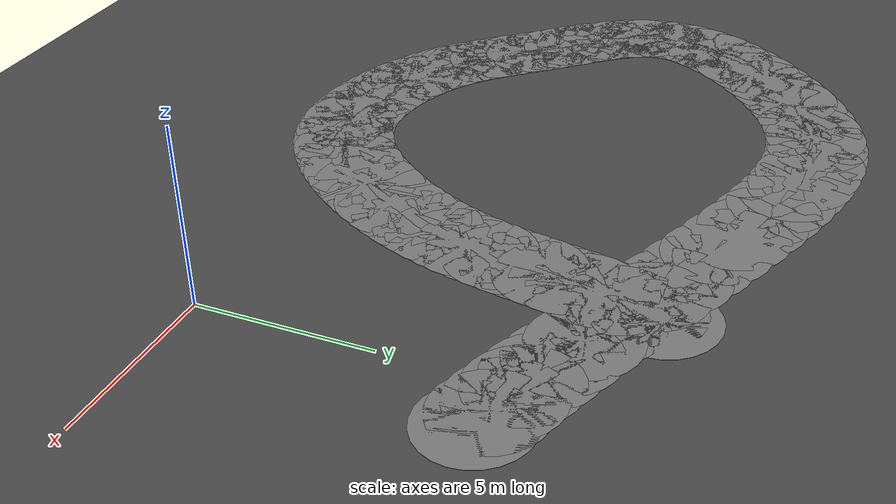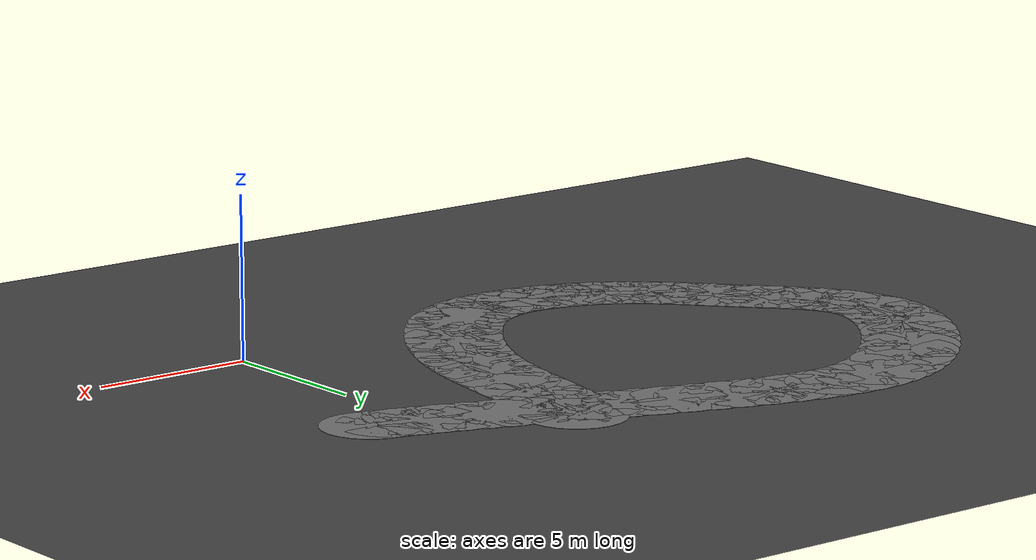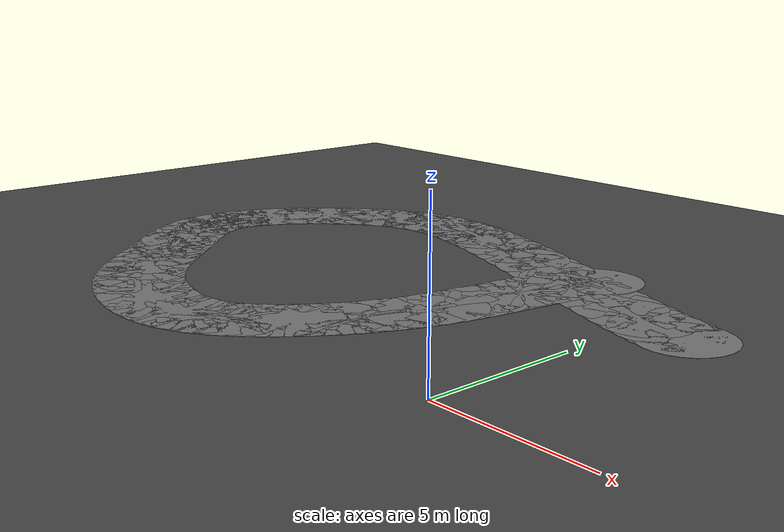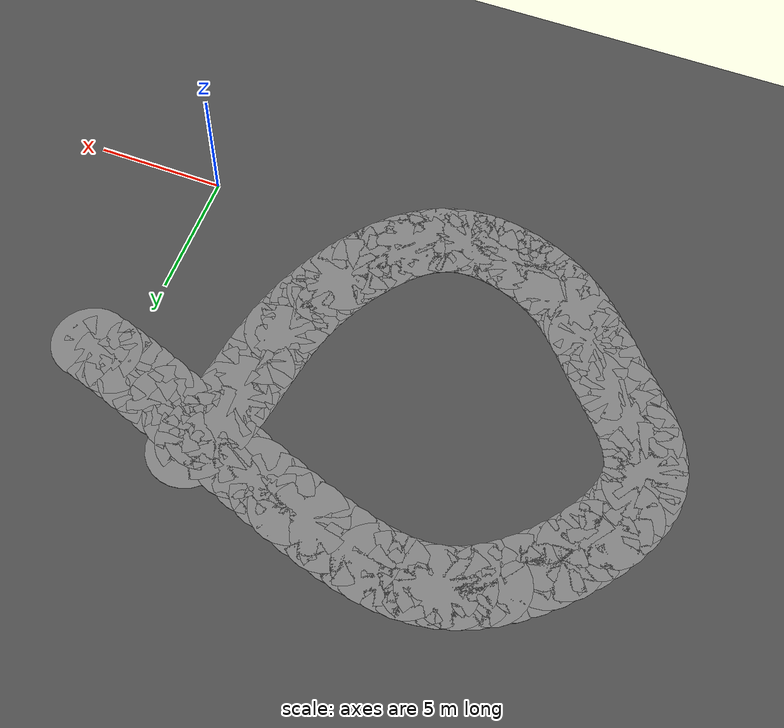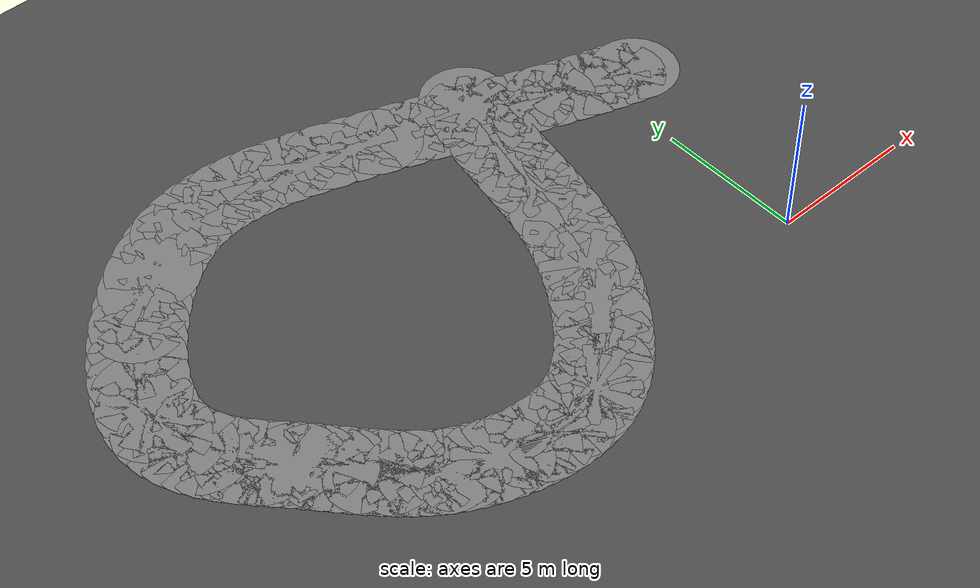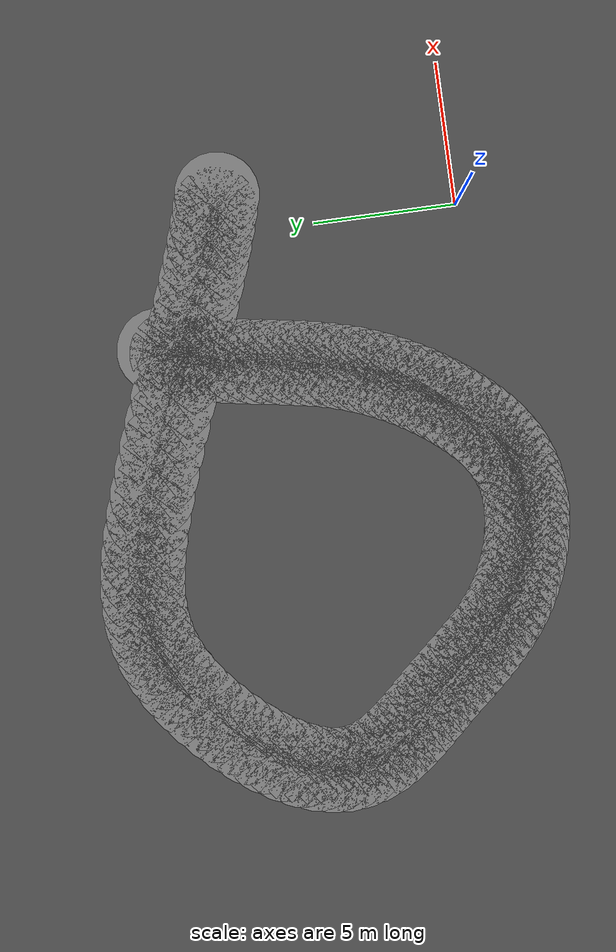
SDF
<sdf version="1.6">
 <world name="mirror_edge_world">
  <model name="ground_plane">
   <static>true</static>
   <link name="link">
    <collision name="collision">
     <geometry><plane><normal>0 0 1</normal><size>100 100</size></plane></geometry>
    </collision>
    <visual name="visual">
     <geometry><plane><normal>0 0 1</normal><size>100 100</size></plane></geometry>
     <material>
      <ambient>0.3 0.3 0.3 1</ambient>
      <diffuse>0.3 0.3 0.3 1</diffuse>
      <specular>0.5 0.5 0.5 1</specular>
      <emissive>0 0 0 1</emissive>
     </material>
    </visual>
   </link>
  </model>
  <model name="corridor_hex_199_0">
   <static>true</static>
   <link name="link">
    <pose>1.483 8.22 0.005 0 0 0</pose>
    <visual name="visual">
     <geometry><cylinder><radius>1.5</radius><length>0.01</length><segments>6</segments></cylinder></geometry>
     <material>
      <ambient>0.5 0.5 0.5 1</ambient>
      <diffuse>0.5 0.5 0.5 1</diffuse>
      <specular>0.3 0.3 0.3 1</specular>
      <emissive>0 0 0 1</emissive>
     </material>
    </visual>
   </link>
  </model>
  <model name="corridor_hex_200_0">
   <static>true</static>
   <link name="link">
    <pose>0.978 8.351 0.005 0 0 0</pose>
    <visual name="visual">
     <geometry><cylinder><radius>1.5</radius><length>0.01</length><segments>6</segments></cylinder></geometry>
     <material>
      <ambient>0.5 0.5 0.5 1</ambient>
      <diffuse>0.5 0.5 0.5 1</diffuse>
      <specular>0.3 0.3 0.3 1</specular>
      <emissive>0 0 0 1</emissive>
     </material>
    </visual>
   </link>
  </model>
  <model name="corridor_hex_201_0">
   <static>true</static>
   <link name="link">
    <pose>0.436 8.511 0.005 0 0 0</pose>
    <visual name="visual">
     <geometry><cylinder><radius>1.5</radius><length>0.01</length><segments>6</segments></cylinder></geometry>
     <material>
      <ambient>0.5 0.5 0.5 1</ambient>
      <diffuse>0.5 0.5 0.5 1</diffuse>
      <specular>0.3 0.3 0.3 1</specular>
      <emissive>0 0 0 1</emissive>
     </material>
    </visual>
   </link>
  </model>
  <model name="corridor_hex_202_0">
   <static>true</static>
   <link name="link">
    <pose>-0.147 8.7 0.005 0 0 0</pose>
    <visual name="visual">
     <geometry><cylinder><radius>1.5</radius><length>0.01</length><segments>6</segments></cylinder></geometry>
     <material>
      <ambient>0.5 0.5 0.5 1</ambient>
      <diffuse>0.5 0.5 0.5 1</diffuse>
      <specular>0.3 0.3 0.3 1</specular>
      <emissive>0 0 0 1</emissive>
     </material>
    </visual>
   </link>
  </model>
  <model name="corridor_hex_203_0">
   <static>true</static>
   <link name="link">
    <pose>-0.778 8.92 0.005 0 0 0</pose>
    <visual name="visual">
     <geometry><cylinder><radius>1.5</radius><length>0.01</length><segments>6</segments></cylinder></geometry>
     <material>
      <ambient>0.5 0.5 0.5 1</ambient>
      <diffuse>0.5 0.5 0.5 1</diffuse>
      <specular>0.3 0.3 0.3 1</specular>
      <emissive>0 0 0 1</emissive>
     </material>
    </visual>
   </link>
  </model>
  <model name="corridor_hex_204_0">
   <static>true</static>
   <link name="link">
    <pose>-1.462 9.17 0.005 0 0 0</pose>
    <visual name="visual">
     <geometry><cylinder><radius>1.5</radius><length>0.01</length><segments>6</segments></cylinder></geometry>
     <material>
      <ambient>0.5 0.5 0.5 1</ambient>
      <diffuse>0.5 0.5 0.5 1</diffuse>
      <specular>0.3 0.3 0.3 1</specular>
      <emissive>0 0 0 1</emissive>
     </material>
    </visual>
   </link>
  </model>
  <model name="corridor_hex_205_0">
   <static>true</static>
   <link name="link">
    <pose>-2.194 9.448 0.005 0 0 0</pose>
    <visual name="visual">
     <geometry><cylinder><radius>1.5</radius><length>0.01</length><segments>6</segments></cylinder></geometry>
     <material>
      <ambient>0.5 0.5 0.5 1</ambient>
      <diffuse>0.5 0.5 0.5 1</diffuse>
      <specular>0.3 0.3 0.3 1</specular>
      <emissive>0 0 0 1</emissive>
     </material>
    </visual>
   </link>
  </model>
  <model name="corridor_hex_206_0">
   <static>true</static>
   <link name="link">
    <pose>-2.964 9.746 0.005 0 0 0</pose>
    <visual name="visual">
     <geometry><cylinder><radius>1.5</radius><length>0.01</length><segments>6</segments></cylinder></geometry>
     <material>
      <ambient>0.5 0.5 0.5 1</ambient>
      <diffuse>0.5 0.5 0.5 1</diffuse>
      <specular>0.3 0.3 0.3 1</specular>
      <emissive>0 0 0 1</emissive>
     </material>
    </visual>
   </link>
  </model>
  <model name="corridor_hex_207_0">
   <static>true</static>
   <link name="link">
    <pose>-3.764 10.058 0.005 0 0 0</pose>
    <visual name="visual">
     <geometry><cylinder><radius>1.5</radius><length>0.01</length><segments>6</segments></cylinder></geometry>
     <material>
      <ambient>0.5 0.5 0.5 1</ambient>
      <diffuse>0.5 0.5 0.5 1</diffuse>
      <specular>0.3 0.3 0.3 1</specular>
      <emissive>0 0 0 1</emissive>
     </material>
    </visual>
   </link>
  </model>
  <model name="corridor_hex_208_0">
   <static>true</static>
   <link name="link">
    <pose>-4.584 10.379 0.005 0 0 0</pose>
    <visual name="visual">
     <geometry><cylinder><radius>1.5</radius><length>0.01</length><segments>6</segments></cylinder></geometry>
     <material>
      <ambient>0.5 0.5 0.5 1</ambient>
      <diffuse>0.5 0.5 0.5 1</diffuse>
      <specular>0.3 0.3 0.3 1</specular>
      <emissive>0 0 0 1</emissive>
     </material>
    </visual>
   </link>
  </model>
  <model name="corridor_hex_209_0">
   <static>true</static>
   <link name="link">
    <pose>-5.413 10.701 0.005 0 0 0</pose>
    <visual name="visual">
     <geometry><cylinder><radius>1.5</radius><length>0.01</length><segments>6</segments></cylinder></geometry>
     <material>
      <ambient>0.5 0.5 0.5 1</ambient>
      <diffuse>0.5 0.5 0.5 1</diffuse>
      <specular>0.3 0.3 0.3 1</specular>
      <emissive>0 0 0 1</emissive>
     </material>
    </visual>
   </link>
  </model>
  <model name="corridor_hex_210_0">
   <static>true</static>
   <link name="link">
    <pose>-6.241 11.018 0.005 0 0 0</pose>
    <visual name="visual">
     <geometry><cylinder><radius>1.5</radius><length>0.01</length><segments>6</segments></cylinder></geometry>
     <material>
      <ambient>0.5 0.5 0.5 1</ambient>
      <diffuse>0.5 0.5 0.5 1</diffuse>
      <specular>0.3 0.3 0.3 1</specular>
      <emissive>0 0 0 1</emissive>
     </material>
    </visual>
   </link>
  </model>
  <model name="corridor_hex_211_0">
   <static>true</static>
   <link name="link">
    <pose>-7.06 11.324 0.005 0 0 0</pose>
    <visual name="visual">
     <geometry><cylinder><radius>1.5</radius><length>0.01</length><segments>6</segments></cylinder></geometry>
     <material>
      <ambient>0.5 0.5 0.5 1</ambient>
      <diffuse>0.5 0.5 0.5 1</diffuse>
      <specular>0.3 0.3 0.3 1</specular>
      <emissive>0 0 0 1</emissive>
     </material>
    </visual>
   </link>
  </model>
  <model name="corridor_hex_212_0">
   <static>true</static>
   <link name="link">
    <pose>-7.859 11.613 0.005 0 0 0</pose>
    <visual name="visual">
     <geometry><cylinder><radius>1.5</radius><length>0.01</length><segments>6</segments></cylinder></geometry>
     <material>
      <ambient>0.5 0.5 0.5 1</ambient>
      <diffuse>0.5 0.5 0.5 1</diffuse>
      <specular>0.3 0.3 0.3 1</specular>
      <emissive>0 0 0 1</emissive>
     </material>
    </visual>
   </link>
  </model>
  <model name="corridor_hex_213_0">
   <static>true</static>
   <link name="link">
    <pose>-8.629 11.878 0.005 0 0 0</pose>
    <visual name="visual">
     <geometry><cylinder><radius>1.5</radius><length>0.01</length><segments>6</segments></cylinder></geometry>
     <material>
      <ambient>0.5 0.5 0.5 1</ambient>
      <diffuse>0.5 0.5 0.5 1</diffuse>
      <specular>0.3 0.3 0.3 1</specular>
      <emissive>0 0 0 1</emissive>
     </material>
    </visual>
   </link>
  </model>
  <model name="corridor_hex_214_0">
   <static>true</static>
   <link name="link">
    <pose>-9.36 12.113 0.005 0 0 0</pose>
    <visual name="visual">
     <geometry><cylinder><radius>1.5</radius><length>0.01</length><segments>6</segments></cylinder></geometry>
     <material>
      <ambient>0.5 0.5 0.5 1</ambient>
      <diffuse>0.5 0.5 0.5 1</diffuse>
      <specular>0.3 0.3 0.3 1</specular>
      <emissive>0 0 0 1</emissive>
     </material>
    </visual>
   </link>
  </model>
  <model name="corridor_hex_215_0">
   <static>true</static>
   <link name="link">
    <pose>-10.05 12.313 0.005 0 0 0</pose>
    <visual name="visual">
     <geometry><cylinder><radius>1.5</radius><length>0.01</length><segments>6</segments></cylinder></geometry>
     <material>
      <ambient>0.5 0.5 0.5 1</ambient>
      <diffuse>0.5 0.5 0.5 1</diffuse>
      <specular>0.3 0.3 0.3 1</specular>
      <emissive>0 0 0 1</emissive>
     </material>
    </visual>
   </link>
  </model>
  <model name="corridor_hex_216_0">
   <static>true</static>
   <link name="link">
    <pose>-10.703 12.474 0.005 0 0 0</pose>
    <visual name="visual">
     <geometry><cylinder><radius>1.5</radius><length>0.01</length><segments>6</segments></cylinder></geometry>
     <material>
      <ambient>0.5 0.5 0.5 1</ambient>
      <diffuse>0.5 0.5 0.5 1</diffuse>
      <specular>0.3 0.3 0.3 1</specular>
      <emissive>0 0 0 1</emissive>
     </material>
    </visual>
   </link>
  </model>
  <model name="corridor_hex_217_0">
   <static>true</static>
   <link name="link">
    <pose>-11.323 12.592 0.005 0 0 0</pose>
    <visual name="visual">
     <geometry><cylinder><radius>1.5</radius><length>0.01</length><segments>6</segments></cylinder></geometry>
     <material>
      <ambient>0.5 0.5 0.5 1</ambient>
      <diffuse>0.5 0.5 0.5 1</diffuse>
      <specular>0.3 0.3 0.3 1</specular>
      <emissive>0 0 0 1</emissive>
     </material>
    </visual>
   </link>
  </model>
  <model name="corridor_hex_218_0">
   <static>true</static>
   <link name="link">
    <pose>-11.917 12.664 0.005 0 0 0</pose>
    <visual name="visual">
     <geometry><cylinder><radius>1.5</radius><length>0.01</length><segments>6</segments></cylinder></geometry>
     <material>
      <ambient>0.5 0.5 0.5 1</ambient>
      <diffuse>0.5 0.5 0.5 1</diffuse>
      <specular>0.3 0.3 0.3 1</specular>
      <emissive>0 0 0 1</emissive>
     </material>
    </visual>
   </link>
  </model>
  <model name="corridor_hex_219_0">
   <static>true</static>
   <link name="link">
    <pose>-12.488 12.684 0.005 0 0 0</pose>
    <visual name="visual">
     <geometry><cylinder><radius>1.5</radius><length>0.01</length><segments>6</segments></cylinder></geometry>
     <material>
      <ambient>0.5 0.5 0.5 1</ambient>
      <diffuse>0.5 0.5 0.5 1</diffuse>
      <specular>0.3 0.3 0.3 1</specular>
      <emissive>0 0 0 1</emissive>
     </material>
    </visual>
   </link>
  </model>
  <model name="corridor_hex_220_0">
   <static>true</static>
   <link name="link">
    <pose>-13.042 12.651 0.005 0 0 0</pose>
    <visual name="visual">
     <geometry><cylinder><radius>1.5</radius><length>0.01</length><segments>6</segments></cylinder></geometry>
     <material>
      <ambient>0.5 0.5 0.5 1</ambient>
      <diffuse>0.5 0.5 0.5 1</diffuse>
      <specular>0.3 0.3 0.3 1</specular>
      <emissive>0 0 0 1</emissive>
     </material>
    </visual>
   </link>
  </model>
  <model name="corridor_hex_221_0">
   <static>true</static>
   <link name="link">
    <pose>-13.583 12.559 0.005 0 0 0</pose>
    <visual name="visual">
     <geometry><cylinder><radius>1.5</radius><length>0.01</length><segments>6</segments></cylinder></geometry>
     <material>
      <ambient>0.5 0.5 0.5 1</ambient>
      <diffuse>0.5 0.5 0.5 1</diffuse>
      <specular>0.3 0.3 0.3 1</specular>
      <emissive>0 0 0 1</emissive>
     </material>
    </visual>
   </link>
  </model>
  <model name="corridor_hex_222_0">
   <static>true</static>
   <link name="link">
    <pose>-14.116 12.405 0.005 0 0 0</pose>
    <visual name="visual">
     <geometry><cylinder><radius>1.5</radius><length>0.01</length><segments>6</segments></cylinder></geometry>
     <material>
      <ambient>0.5 0.5 0.5 1</ambient>
      <diffuse>0.5 0.5 0.5 1</diffuse>
      <specular>0.3 0.3 0.3 1</specular>
      <emissive>0 0 0 1</emissive>
     </material>
    </visual>
   </link>
  </model>
  <model name="corridor_hex_223_0">
   <static>true</static>
   <link name="link">
    <pose>-14.646 12.185 0.005 0 0 0</pose>
    <visual name="visual">
     <geometry><cylinder><radius>1.5</radius><length>0.01</length><segments>6</segments></cylinder></geometry>
     <material>
      <ambient>0.5 0.5 0.5 1</ambient>
      <diffuse>0.5 0.5 0.5 1</diffuse>
      <specular>0.3 0.3 0.3 1</specular>
      <emissive>0 0 0 1</emissive>
     </material>
    </visual>
   </link>
  </model>
  <model name="corridor_hex_224_0">
   <static>true</static>
   <link name="link">
    <pose>-15.178 11.896 0.005 0 0 0</pose>
    <visual name="visual">
     <geometry><cylinder><radius>1.5</radius><length>0.01</length><segments>6</segments></cylinder></geometry>
     <material>
      <ambient>0.5 0.5 0.5 1</ambient>
      <diffuse>0.5 0.5 0.5 1</diffuse>
      <specular>0.3 0.3 0.3 1</specular>
      <emissive>0 0 0 1</emissive>
     </material>
    </visual>
   </link>
  </model>
  <model name="corridor_hex_225_0">
   <static>true</static>
   <link name="link">
    <pose>-15.71 11.538 0.005 0 0 0</pose>
    <visual name="visual">
     <geometry><cylinder><radius>1.5</radius><length>0.01</length><segments>6</segments></cylinder></geometry>
     <material>
      <ambient>0.5 0.5 0.5 1</ambient>
      <diffuse>0.5 0.5 0.5 1</diffuse>
      <specular>0.3 0.3 0.3 1</specular>
      <emissive>0 0 0 1</emissive>
     </material>
    </visual>
   </link>
  </model>
  <model name="corridor_hex_226_0">
   <static>true</static>
   <link name="link">
    <pose>-16.235 11.122 0.005 0 0 0</pose>
    <visual name="visual">
     <geometry><cylinder><radius>1.5</radius><length>0.01</length><segments>6</segments></cylinder></geometry>
     <material>
      <ambient>0.5 0.5 0.5 1</ambient>
      <diffuse>0.5 0.5 0.5 1</diffuse>
      <specular>0.3 0.3 0.3 1</specular>
      <emissive>0 0 0 1</emissive>
     </material>
    </visual>
   </link>
  </model>
  <model name="corridor_hex_227_0">
   <static>true</static>
   <link name="link">
    <pose>-16.743 10.657 0.005 0 0 0</pose>
    <visual name="visual">
     <geometry><cylinder><radius>1.5</radius><length>0.01</length><segments>6</segments></cylinder></geometry>
     <material>
      <ambient>0.5 0.5 0.5 1</ambient>
      <diffuse>0.5 0.5 0.5 1</diffuse>
      <specular>0.3 0.3 0.3 1</specular>
      <emissive>0 0 0 1</emissive>
     </material>
    </visual>
   </link>
  </model>
  <model name="corridor_hex_228_0">
   <static>true</static>
   <link name="link">
    <pose>-17.224 10.155 0.005 0 0 0</pose>
    <visual name="visual">
     <geometry><cylinder><radius>1.5</radius><length>0.01</length><segments>6</segments></cylinder></geometry>
     <material>
      <ambient>0.5 0.5 0.5 1</ambient>
      <diffuse>0.5 0.5 0.5 1</diffuse>
      <specular>0.3 0.3 0.3 1</specular>
      <emissive>0 0 0 1</emissive>
     </material>
    </visual>
   </link>
  </model>
  <model name="corridor_hex_229_0">
   <static>true</static>
   <link name="link">
    <pose>-17.669 9.624 0.005 0 0 0</pose>
    <visual name="visual">
     <geometry><cylinder><radius>1.5</radius><length>0.01</length><segments>6</segments></cylinder></geometry>
     <material>
      <ambient>0.5 0.5 0.5 1</ambient>
      <diffuse>0.5 0.5 0.5 1</diffuse>
      <specular>0.3 0.3 0.3 1</specular>
      <emissive>0 0 0 1</emissive>
     </material>
    </visual>
   </link>
  </model>
  <model name="corridor_hex_230_0">
   <static>true</static>
   <link name="link">
    <pose>-18.067 9.076 0.005 0 0 0</pose>
    <visual name="visual">
     <geometry><cylinder><radius>1.5</radius><length>0.01</length><segments>6</segments></cylinder></geometry>
     <material>
      <ambient>0.5 0.5 0.5 1</ambient>
      <diffuse>0.5 0.5 0.5 1</diffuse>
      <specular>0.3 0.3 0.3 1</specular>
      <emissive>0 0 0 1</emissive>
     </material>
    </visual>
   </link>
  </model>
  <model name="corridor_hex_231_0">
   <static>true</static>
   <link name="link">
    <pose>-18.411 8.521 0.005 0 0 0</pose>
    <visual name="visual">
     <geometry><cylinder><radius>1.5</radius><length>0.01</length><segments>6</segments></cylinder></geometry>
     <material>
      <ambient>0.5 0.5 0.5 1</ambient>
      <diffuse>0.5 0.5 0.5 1</diffuse>
      <specular>0.3 0.3 0.3 1</specular>
      <emissive>0 0 0 1</emissive>
     </material>
    </visual>
   </link>
  </model>
  <model name="corridor_hex_232_0">
   <static>true</static>
   <link name="link">
    <pose>-18.689 7.97 0.005 0 0 0</pose>
    <visual name="visual">
     <geometry><cylinder><radius>1.5</radius><length>0.01</length><segments>6</segments></cylinder></geometry>
     <material>
      <ambient>0.5 0.5 0.5 1</ambient>
      <diffuse>0.5 0.5 0.5 1</diffuse>
      <specular>0.3 0.3 0.3 1</specular>
      <emissive>0 0 0 1</emissive>
     </material>
    </visual>
   </link>
  </model>
  <model name="corridor_hex_233_0">
   <static>true</static>
   <link name="link">
    <pose>-18.894 7.431 0.005 0 0 0</pose>
    <visual name="visual">
     <geometry><cylinder><radius>1.5</radius><length>0.01</length><segments>6</segments></cylinder></geometry>
     <material>
      <ambient>0.5 0.5 0.5 1</ambient>
      <diffuse>0.5 0.5 0.5 1</diffuse>
      <specular>0.3 0.3 0.3 1</specular>
      <emissive>0 0 0 1</emissive>
     </material>
    </visual>
   </link>
  </model>
  <model name="corridor_hex_234_0">
   <static>true</static>
   <link name="link">
    <pose>-19.014 6.916 0.005 0 0 0</pose>
    <visual name="visual">
     <geometry><cylinder><radius>1.5</radius><length>0.01</length><segments>6</segments></cylinder></geometry>
     <material>
      <ambient>0.5 0.5 0.5 1</ambient>
      <diffuse>0.5 0.5 0.5 1</diffuse>
      <specular>0.3 0.3 0.3 1</specular>
      <emissive>0 0 0 1</emissive>
     </material>
    </visual>
   </link>
  </model>
  <model name="corridor_hex_235_0">
   <static>true</static>
   <link name="link">
    <pose>-19.046 6.432 0.005 0 0 0</pose>
    <visual name="visual">
     <geometry><cylinder><radius>1.5</radius><length>0.01</length><segments>6</segments></cylinder></geometry>
     <material>
      <ambient>0.5 0.5 0.5 1</ambient>
      <diffuse>0.5 0.5 0.5 1</diffuse>
      <specular>0.3 0.3 0.3 1</specular>
      <emissive>0 0 0 1</emissive>
     </material>
    </visual>
   </link>
  </model>
  <model name="corridor_hex_236_0">
   <static>true</static>
   <link name="link">
    <pose>-18.998 5.976 0.005 0 0 0</pose>
    <visual name="visual">
     <geometry><cylinder><radius>1.5</radius><length>0.01</length><segments>6</segments></cylinder></geometry>
     <material>
      <ambient>0.5 0.5 0.5 1</ambient>
      <diffuse>0.5 0.5 0.5 1</diffuse>
      <specular>0.3 0.3 0.3 1</specular>
      <emissive>0 0 0 1</emissive>
     </material>
    </visual>
   </link>
  </model>
  <model name="corridor_hex_237_0">
   <static>true</static>
   <link name="link">
    <pose>-18.881 5.546 0.005 0 0 0</pose>
    <visual name="visual">
     <geometry><cylinder><radius>1.5</radius><length>0.01</length><segments>6</segments></cylinder></geometry>
     <material>
      <ambient>0.5 0.5 0.5 1</ambient>
      <diffuse>0.5 0.5 0.5 1</diffuse>
      <specular>0.3 0.3 0.3 1</specular>
      <emissive>0 0 0 1</emissive>
     </material>
    </visual>
   </link>
  </model>
  <model name="corridor_hex_238_0">
   <static>true</static>
   <link name="link">
    <pose>-18.706 5.139 0.005 0 0 0</pose>
    <visual name="visual">
     <geometry><cylinder><radius>1.5</radius><length>0.01</length><segments>6</segments></cylinder></geometry>
     <material>
      <ambient>0.5 0.5 0.5 1</ambient>
      <diffuse>0.5 0.5 0.5 1</diffuse>
      <specular>0.3 0.3 0.3 1</specular>
      <emissive>0 0 0 1</emissive>
     </material>
    </visual>
   </link>
  </model>
  <model name="corridor_hex_239_0">
   <static>true</static>
   <link name="link">
    <pose>-18.482 4.751 0.005 0 0 0</pose>
    <visual name="visual">
     <geometry><cylinder><radius>1.5</radius><length>0.01</length><segments>6</segments></cylinder></geometry>
     <material>
      <ambient>0.5 0.5 0.5 1</ambient>
      <diffuse>0.5 0.5 0.5 1</diffuse>
      <specular>0.3 0.3 0.3 1</specular>
      <emissive>0 0 0 1</emissive>
     </material>
    </visual>
   </link>
  </model>
  <model name="corridor_hex_240_0">
   <static>true</static>
   <link name="link">
    <pose>-18.22 4.38 0.005 0 0 0</pose>
    <visual name="visual">
     <geometry><cylinder><radius>1.5</radius><length>0.01</length><segments>6</segments></cylinder></geometry>
     <material>
      <ambient>0.5 0.5 0.5 1</ambient>
      <diffuse>0.5 0.5 0.5 1</diffuse>
      <specular>0.3 0.3 0.3 1</specular>
      <emissive>0 0 0 1</emissive>
     </material>
    </visual>
   </link>
  </model>
  <model name="corridor_hex_241_0">
   <static>true</static>
   <link name="link">
    <pose>-17.93 4.022 0.005 0 0 0</pose>
    <visual name="visual">
     <geometry><cylinder><radius>1.5</radius><length>0.01</length><segments>6</segments></cylinder></geometry>
     <material>
      <ambient>0.5 0.5 0.5 1</ambient>
      <diffuse>0.5 0.5 0.5 1</diffuse>
      <specular>0.3 0.3 0.3 1</specular>
      <emissive>0 0 0 1</emissive>
     </material>
    </visual>
   </link>
  </model>
  <model name="corridor_hex_242_0">
   <static>true</static>
   <link name="link">
    <pose>-17.623 3.675 0.005 0 0 0</pose>
    <visual name="visual">
     <geometry><cylinder><radius>1.5</radius><length>0.01</length><segments>6</segments></cylinder></geometry>
     <material>
      <ambient>0.5 0.5 0.5 1</ambient>
      <diffuse>0.5 0.5 0.5 1</diffuse>
      <specular>0.3 0.3 0.3 1</specular>
      <emissive>0 0 0 1</emissive>
     </material>
    </visual>
   </link>
  </model>
  <model name="corridor_hex_243_0">
   <static>true</static>
   <link name="link">
    <pose>-17.31 3.335 0.005 0 0 0</pose>
    <visual name="visual">
     <geometry><cylinder><radius>1.5</radius><length>0.01</length><segments>6</segments></cylinder></geometry>
     <material>
      <ambient>0.5 0.5 0.5 1</ambient>
      <diffuse>0.5 0.5 0.5 1</diffuse>
      <specular>0.3 0.3 0.3 1</specular>
      <emissive>0 0 0 1</emissive>
     </material>
    </visual>
   </link>
  </model>
  <model name="corridor_hex_244_0">
   <static>true</static>
   <link name="link">
    <pose>-17.0 3.0 0.005 0 0 0</pose>
    <visual name="visual">
     <geometry><cylinder><radius>1.5</radius><length>0.01</length><segments>6</segments></cylinder></geometry>
     <material>
      <ambient>0.5 0.5 0.5 1</ambient>
      <diffuse>0.5 0.5 0.5 1</diffuse>
      <specular>0.3 0.3 0.3 1</specular>
      <emissive>0 0 0 1</emissive>
     </material>
    </visual>
   </link>
  </model>
  <model name="corridor_hex_245_0">
   <static>true</static>
   <link name="link">
    <pose>-16.702 2.667 0.005 0 0 0</pose>
    <visual name="visual">
     <geometry><cylinder><radius>1.5</radius><length>0.01</length><segments>6</segments></cylinder></geometry>
     <material>
      <ambient>0.5 0.5 0.5 1</ambient>
      <diffuse>0.5 0.5 0.5 1</diffuse>
      <specular>0.3 0.3 0.3 1</specular>
      <emissive>0 0 0 1</emissive>
     </material>
    </visual>
   </link>
  </model>
  <model name="corridor_hex_246_0">
   <static>true</static>
   <link name="link">
    <pose>-16.415 2.337 0.005 0 0 0</pose>
    <visual name="visual">
     <geometry><cylinder><radius>1.5</radius><length>0.01</length><segments>6</segments></cylinder></geometry>
     <material>
      <ambient>0.5 0.5 0.5 1</ambient>
      <diffuse>0.5 0.5 0.5 1</diffuse>
      <specular>0.3 0.3 0.3 1</specular>
      <emissive>0 0 0 1</emissive>
     </material>
    </visual>
   </link>
  </model>
  <model name="corridor_hex_247_0">
   <static>true</static>
   <link name="link">
    <pose>-16.134 2.013 0.005 0 0 0</pose>
    <visual name="visual">
     <geometry><cylinder><radius>1.5</radius><length>0.01</length><segments>6</segments></cylinder></geometry>
     <material>
      <ambient>0.5 0.5 0.5 1</ambient>
      <diffuse>0.5 0.5 0.5 1</diffuse>
      <specular>0.3 0.3 0.3 1</specular>
      <emissive>0 0 0 1</emissive>
     </material>
    </visual>
   </link>
  </model>
  <model name="corridor_hex_248_0">
   <static>true</static>
   <link name="link">
    <pose>-15.857 1.695 0.005 0 0 0</pose>
    <visual name="visual">
     <geometry><cylinder><radius>1.5</radius><length>0.01</length><segments>6</segments></cylinder></geometry>
     <material>
      <ambient>0.5 0.5 0.5 1</ambient>
      <diffuse>0.5 0.5 0.5 1</diffuse>
      <specular>0.3 0.3 0.3 1</specular>
      <emissive>0 0 0 1</emissive>
     </material>
    </visual>
   </link>
  </model>
  <model name="corridor_hex_249_0">
   <static>true</static>
   <link name="link">
    <pose>-15.579 1.386 0.005 0 0 0</pose>
    <visual name="visual">
     <geometry><cylinder><radius>1.5</radius><length>0.01</length><segments>6</segments></cylinder></geometry>
     <material>
      <ambient>0.5 0.5 0.5 1</ambient>
      <diffuse>0.5 0.5 0.5 1</diffuse>
      <specular>0.3 0.3 0.3 1</specular>
      <emissive>0 0 0 1</emissive>
     </material>
    </visual>
   </link>
  </model>
  <model name="corridor_hex_250_0">
   <static>true</static>
   <link name="link">
    <pose>-15.297 1.088 0.005 0 0 0</pose>
    <visual name="visual">
     <geometry><cylinder><radius>1.5</radius><length>0.01</length><segments>6</segments></cylinder></geometry>
     <material>
      <ambient>0.5 0.5 0.5 1</ambient>
      <diffuse>0.5 0.5 0.5 1</diffuse>
      <specular>0.3 0.3 0.3 1</specular>
      <emissive>0 0 0 1</emissive>
     </material>
    </visual>
   </link>
  </model>
  <model name="corridor_hex_251_0">
   <static>true</static>
   <link name="link">
    <pose>-15.008 0.802 0.005 0 0 0</pose>
    <visual name="visual">
     <geometry><cylinder><radius>1.5</radius><length>0.01</length><segments>6</segments></cylinder></geometry>
     <material>
      <ambient>0.5 0.5 0.5 1</ambient>
      <diffuse>0.5 0.5 0.5 1</diffuse>
      <specular>0.3 0.3 0.3 1</specular>
      <emissive>0 0 0 1</emissive>
     </material>
    </visual>
   </link>
  </model>
  <model name="corridor_hex_252_0">
   <static>true</static>
   <link name="link">
    <pose>-14.707 0.531 0.005 0 0 0</pose>
    <visual name="visual">
     <geometry><cylinder><radius>1.5</radius><length>0.01</length><segments>6</segments></cylinder></geometry>
     <material>
      <ambient>0.5 0.5 0.5 1</ambient>
      <diffuse>0.5 0.5 0.5 1</diffuse>
      <specular>0.3 0.3 0.3 1</specular>
      <emissive>0 0 0 1</emissive>
     </material>
    </visual>
   </link>
  </model>
  <model name="corridor_hex_253_0">
   <static>true</static>
   <link name="link">
    <pose>-14.392 0.275 0.005 0 0 0</pose>
    <visual name="visual">
     <geometry><cylinder><radius>1.5</radius><length>0.01</length><segments>6</segments></cylinder></geometry>
     <material>
      <ambient>0.5 0.5 0.5 1</ambient>
      <diffuse>0.5 0.5 0.5 1</diffuse>
      <specular>0.3 0.3 0.3 1</specular>
      <emissive>0 0 0 1</emissive>
     </material>
    </visual>
   </link>
  </model>
  <model name="corridor_hex_254_0">
   <static>true</static>
   <link name="link">
    <pose>-14.058 0.038 0.005 0 0 0</pose>
    <visual name="visual">
     <geometry><cylinder><radius>1.5</radius><length>0.01</length><segments>6</segments></cylinder></geometry>
     <material>
      <ambient>0.5 0.5 0.5 1</ambient>
      <diffuse>0.5 0.5 0.5 1</diffuse>
      <specular>0.3 0.3 0.3 1</specular>
      <emissive>0 0 0 1</emissive>
     </material>
    </visual>
   </link>
  </model>
  <model name="corridor_hex_255_0">
   <static>true</static>
   <link name="link">
    <pose>-13.702 -0.18 0.005 0 0 0</pose>
    <visual name="visual">
     <geometry><cylinder><radius>1.5</radius><length>0.01</length><segments>6</segments></cylinder></geometry>
     <material>
      <ambient>0.5 0.5 0.5 1</ambient>
      <diffuse>0.5 0.5 0.5 1</diffuse>
      <specular>0.3 0.3 0.3 1</specular>
      <emissive>0 0 0 1</emissive>
     </material>
    </visual>
   </link>
  </model>
  <model name="corridor_hex_256_0">
   <static>true</static>
   <link name="link">
    <pose>-13.327 -0.377 0.005 0 0 0</pose>
    <visual name="visual">
     <geometry><cylinder><radius>1.5</radius><length>0.01</length><segments>6</segments></cylinder></geometry>
     <material>
      <ambient>0.5 0.5 0.5 1</ambient>
      <diffuse>0.5 0.5 0.5 1</diffuse>
      <specular>0.3 0.3 0.3 1</specular>
      <emissive>0 0 0 1</emissive>
     </material>
    </visual>
   </link>
  </model>
  <model name="corridor_hex_257_0">
   <static>true</static>
   <link name="link">
    <pose>-12.937 -0.55 0.005 0 0 0</pose>
    <visual name="visual">
     <geometry><cylinder><radius>1.5</radius><length>0.01</length><segments>6</segments></cylinder></geometry>
     <material>
      <ambient>0.5 0.5 0.5 1</ambient>
      <diffuse>0.5 0.5 0.5 1</diffuse>
      <specular>0.3 0.3 0.3 1</specular>
      <emissive>0 0 0 1</emissive>
     </material>
    </visual>
   </link>
  </model>
  <model name="corridor_hex_258_0">
   <static>true</static>
   <link name="link">
    <pose>-12.536 -0.7 0.005 0 0 0</pose>
    <visual name="visual">
     <geometry><cylinder><radius>1.5</radius><length>0.01</length><segments>6</segments></cylinder></geometry>
     <material>
      <ambient>0.5 0.5 0.5 1</ambient>
      <diffuse>0.5 0.5 0.5 1</diffuse>
      <specular>0.3 0.3 0.3 1</specular>
      <emissive>0 0 0 1</emissive>
     </material>
    </visual>
   </link>
  </model>
  <model name="corridor_hex_259_0">
   <static>true</static>
   <link name="link">
    <pose>-12.128 -0.825 0.005 0 0 0</pose>
    <visual name="visual">
     <geometry><cylinder><radius>1.5</radius><length>0.01</length><segments>6</segments></cylinder></geometry>
     <material>
      <ambient>0.5 0.5 0.5 1</ambient>
      <diffuse>0.5 0.5 0.5 1</diffuse>
      <specular>0.3 0.3 0.3 1</specular>
      <emissive>0 0 0 1</emissive>
     </material>
    </visual>
   </link>
  </model>
  <model name="corridor_hex_260_0">
   <static>true</static>
   <link name="link">
    <pose>-11.716 -0.922 0.005 0 0 0</pose>
    <visual name="visual">
     <geometry><cylinder><radius>1.5</radius><length>0.01</length><segments>6</segments></cylinder></geometry>
     <material>
      <ambient>0.5 0.5 0.5 1</ambient>
      <diffuse>0.5 0.5 0.5 1</diffuse>
      <specular>0.3 0.3 0.3 1</specular>
      <emissive>0 0 0 1</emissive>
     </material>
    </visual>
   </link>
  </model>
  <model name="corridor_hex_261_0">
   <static>true</static>
   <link name="link">
    <pose>-11.306 -0.991 0.005 0 0 0</pose>
    <visual name="visual">
     <geometry><cylinder><radius>1.5</radius><length>0.01</length><segments>6</segments></cylinder></geometry>
     <material>
      <ambient>0.5 0.5 0.5 1</ambient>
      <diffuse>0.5 0.5 0.5 1</diffuse>
      <specular>0.3 0.3 0.3 1</specular>
      <emissive>0 0 0 1</emissive>
     </material>
    </visual>
   </link>
  </model>
  <model name="corridor_hex_262_0">
   <static>true</static>
   <link name="link">
    <pose>-10.901 -1.031 0.005 0 0 0</pose>
    <visual name="visual">
     <geometry><cylinder><radius>1.5</radius><length>0.01</length><segments>6</segments></cylinder></geometry>
     <material>
      <ambient>0.5 0.5 0.5 1</ambient>
      <diffuse>0.5 0.5 0.5 1</diffuse>
      <specular>0.3 0.3 0.3 1</specular>
      <emissive>0 0 0 1</emissive>
     </material>
    </visual>
   </link>
  </model>
  <model name="corridor_hex_263_0">
   <static>true</static>
   <link name="link">
    <pose>-10.506 -1.039 0.005 0 0 0</pose>
    <visual name="visual">
     <geometry><cylinder><radius>1.5</radius><length>0.01</length><segments>6</segments></cylinder></geometry>
     <material>
      <ambient>0.5 0.5 0.5 1</ambient>
      <diffuse>0.5 0.5 0.5 1</diffuse>
      <specular>0.3 0.3 0.3 1</specular>
      <emissive>0 0 0 1</emissive>
     </material>
    </visual>
   </link>
  </model>
  <model name="corridor_hex_264_0">
   <static>true</static>
   <link name="link">
    <pose>-10.124 -1.015 0.005 0 0 0</pose>
    <visual name="visual">
     <geometry><cylinder><radius>1.5</radius><length>0.01</length><segments>6</segments></cylinder></geometry>
     <material>
      <ambient>0.5 0.5 0.5 1</ambient>
      <diffuse>0.5 0.5 0.5 1</diffuse>
      <specular>0.3 0.3 0.3 1</specular>
      <emissive>0 0 0 1</emissive>
     </material>
    </visual>
   </link>
  </model>
  <model name="corridor_hex_265_0">
   <static>true</static>
   <link name="link">
    <pose>-9.759 -0.958 0.005 0 0 0</pose>
    <visual name="visual">
     <geometry><cylinder><radius>1.5</radius><length>0.01</length><segments>6</segments></cylinder></geometry>
     <material>
      <ambient>0.5 0.5 0.5 1</ambient>
      <diffuse>0.5 0.5 0.5 1</diffuse>
      <specular>0.3 0.3 0.3 1</specular>
      <emissive>0 0 0 1</emissive>
     </material>
    </visual>
   </link>
  </model>
  <model name="corridor_hex_266_0">
   <static>true</static>
   <link name="link">
    <pose>-9.412 -0.867 0.005 0 0 0</pose>
    <visual name="visual">
     <geometry><cylinder><radius>1.5</radius><length>0.01</length><segments>6</segments></cylinder></geometry>
     <material>
      <ambient>0.5 0.5 0.5 1</ambient>
      <diffuse>0.5 0.5 0.5 1</diffuse>
      <specular>0.3 0.3 0.3 1</specular>
      <emissive>0 0 0 1</emissive>
     </material>
    </visual>
   </link>
  </model>
  <model name="corridor_hex_267_0">
   <static>true</static>
   <link name="link">
    <pose>-9.082 -0.745 0.005 0 0 0</pose>
    <visual name="visual">
     <geometry><cylinder><radius>1.5</radius><length>0.01</length><segments>6</segments></cylinder></geometry>
     <material>
      <ambient>0.5 0.5 0.5 1</ambient>
      <diffuse>0.5 0.5 0.5 1</diffuse>
      <specular>0.3 0.3 0.3 1</specular>
      <emissive>0 0 0 1</emissive>
     </material>
    </visual>
   </link>
  </model>
  <model name="corridor_hex_268_0">
   <static>true</static>
   <link name="link">
    <pose>-8.767 -0.593 0.005 0 0 0</pose>
    <visual name="visual">
     <geometry><cylinder><radius>1.5</radius><length>0.01</length><segments>6</segments></cylinder></geometry>
     <material>
      <ambient>0.5 0.5 0.5 1</ambient>
      <diffuse>0.5 0.5 0.5 1</diffuse>
      <specular>0.3 0.3 0.3 1</specular>
      <emissive>0 0 0 1</emissive>
     </material>
    </visual>
   </link>
  </model>
  <model name="corridor_hex_269_0">
   <static>true</static>
   <link name="link">
    <pose>-8.466 -0.413 0.005 0 0 0</pose>
    <visual name="visual">
     <geometry><cylinder><radius>1.5</radius><length>0.01</length><segments>6</segments></cylinder></geometry>
     <material>
      <ambient>0.5 0.5 0.5 1</ambient>
      <diffuse>0.5 0.5 0.5 1</diffuse>
      <specular>0.3 0.3 0.3 1</specular>
      <emissive>0 0 0 1</emissive>
     </material>
    </visual>
   </link>
  </model>
  <model name="corridor_hex_270_0">
   <static>true</static>
   <link name="link">
    <pose>-8.178 -0.207 0.005 0 0 0</pose>
    <visual name="visual">
     <geometry><cylinder><radius>1.5</radius><length>0.01</length><segments>6</segments></cylinder></geometry>
     <material>
      <ambient>0.5 0.5 0.5 1</ambient>
      <diffuse>0.5 0.5 0.5 1</diffuse>
      <specular>0.3 0.3 0.3 1</specular>
      <emissive>0 0 0 1</emissive>
     </material>
    </visual>
   </link>
  </model>
  <model name="corridor_hex_271_0">
   <static>true</static>
   <link name="link">
    <pose>-7.901 0.024 0.005 0 0 0</pose>
    <visual name="visual">
     <geometry><cylinder><radius>1.5</radius><length>0.01</length><segments>6</segments></cylinder></geometry>
     <material>
      <ambient>0.5 0.5 0.5 1</ambient>
      <diffuse>0.5 0.5 0.5 1</diffuse>
      <specular>0.3 0.3 0.3 1</specular>
      <emissive>0 0 0 1</emissive>
     </material>
    </visual>
   </link>
  </model>
  <model name="corridor_hex_272_0">
   <static>true</static>
   <link name="link">
    <pose>-7.634 0.278 0.005 0 0 0</pose>
    <visual name="visual">
     <geometry><cylinder><radius>1.5</radius><length>0.01</length><segments>6</segments></cylinder></geometry>
     <material>
      <ambient>0.5 0.5 0.5 1</ambient>
      <diffuse>0.5 0.5 0.5 1</diffuse>
      <specular>0.3 0.3 0.3 1</specular>
      <emissive>0 0 0 1</emissive>
     </material>
    </visual>
   </link>
  </model>
  <model name="corridor_hex_273_0">
   <static>true</static>
   <link name="link">
    <pose>-7.375 0.552 0.005 0 0 0</pose>
    <visual name="visual">
     <geometry><cylinder><radius>1.5</radius><length>0.01</length><segments>6</segments></cylinder></geometry>
     <material>
      <ambient>0.5 0.5 0.5 1</ambient>
      <diffuse>0.5 0.5 0.5 1</diffuse>
      <specular>0.3 0.3 0.3 1</specular>
      <emissive>0 0 0 1</emissive>
     </material>
    </visual>
   </link>
  </model>
  <model name="corridor_hex_274_0">
   <static>true</static>
   <link name="link">
    <pose>-7.123 0.846 0.005 0 0 0</pose>
    <visual name="visual">
     <geometry><cylinder><radius>1.5</radius><length>0.01</length><segments>6</segments></cylinder></geometry>
     <material>
      <ambient>0.5 0.5 0.5 1</ambient>
      <diffuse>0.5 0.5 0.5 1</diffuse>
      <specular>0.3 0.3 0.3 1</specular>
      <emissive>0 0 0 1</emissive>
     </material>
    </visual>
   </link>
  </model>
  <model name="corridor_hex_275_0">
   <static>true</static>
   <link name="link">
    <pose>-6.878 1.158 0.005 0 0 0</pose>
    <visual name="visual">
     <geometry><cylinder><radius>1.5</radius><length>0.01</length><segments>6</segments></cylinder></geometry>
     <material>
      <ambient>0.5 0.5 0.5 1</ambient>
      <diffuse>0.5 0.5 0.5 1</diffuse>
      <specular>0.3 0.3 0.3 1</specular>
      <emissive>0 0 0 1</emissive>
     </material>
    </visual>
   </link>
  </model>
  <model name="corridor_hex_276_0">
   <static>true</static>
   <link name="link">
    <pose>-6.638 1.486 0.005 0 0 0</pose>
    <visual name="visual">
     <geometry><cylinder><radius>1.5</radius><length>0.01</length><segments>6</segments></cylinder></geometry>
     <material>
      <ambient>0.5 0.5 0.5 1</ambient>
      <diffuse>0.5 0.5 0.5 1</diffuse>
      <specular>0.3 0.3 0.3 1</specular>
      <emissive>0 0 0 1</emissive>
     </material>
    </visual>
   </link>
  </model>
  <model name="corridor_hex_277_0">
   <static>true</static>
   <link name="link">
    <pose>-6.405 1.831 0.005 0 0 0</pose>
    <visual name="visual">
     <geometry><cylinder><radius>1.5</radius><length>0.01</length><segments>6</segments></cylinder></geometry>
     <material>
      <ambient>0.5 0.5 0.5 1</ambient>
      <diffuse>0.5 0.5 0.5 1</diffuse>
      <specular>0.3 0.3 0.3 1</specular>
      <emissive>0 0 0 1</emissive>
     </material>
    </visual>
   </link>
  </model>
  <model name="corridor_hex_278_0">
   <static>true</static>
   <link name="link">
    <pose>-6.181 2.192 0.005 0 0 0</pose>
    <visual name="visual">
     <geometry><cylinder><radius>1.5</radius><length>0.01</length><segments>6</segments></cylinder></geometry>
     <material>
      <ambient>0.5 0.5 0.5 1</ambient>
      <diffuse>0.5 0.5 0.5 1</diffuse>
      <specular>0.3 0.3 0.3 1</specular>
      <emissive>0 0 0 1</emissive>
     </material>
    </visual>
   </link>
  </model>
  <model name="corridor_hex_279_0">
   <static>true</static>
   <link name="link">
    <pose>-5.967 2.569 0.005 0 0 0</pose>
    <visual name="visual">
     <geometry><cylinder><radius>1.5</radius><length>0.01</length><segments>6</segments></cylinder></geometry>
     <material>
      <ambient>0.5 0.5 0.5 1</ambient>
      <diffuse>0.5 0.5 0.5 1</diffuse>
      <specular>0.3 0.3 0.3 1</specular>
      <emissive>0 0 0 1</emissive>
     </material>
    </visual>
   </link>
  </model>
  <model name="corridor_hex_280_0">
   <static>true</static>
   <link name="link">
    <pose>-5.764 2.962 0.005 0 0 0</pose>
    <visual name="visual">
     <geometry><cylinder><radius>1.5</radius><length>0.01</length><segments>6</segments></cylinder></geometry>
     <material>
      <ambient>0.5 0.5 0.5 1</ambient>
      <diffuse>0.5 0.5 0.5 1</diffuse>
      <specular>0.3 0.3 0.3 1</specular>
      <emissive>0 0 0 1</emissive>
     </material>
    </visual>
   </link>
  </model>
  <model name="corridor_hex_281_0">
   <static>true</static>
   <link name="link">
    <pose>-5.573 3.371 0.005 0 0 0</pose>
    <visual name="visual">
     <geometry><cylinder><radius>1.5</radius><length>0.01</length><segments>6</segments></cylinder></geometry>
     <material>
      <ambient>0.5 0.5 0.5 1</ambient>
      <diffuse>0.5 0.5 0.5 1</diffuse>
      <specular>0.3 0.3 0.3 1</specular>
      <emissive>0 0 0 1</emissive>
     </material>
    </visual>
   </link>
  </model>
  <model name="corridor_hex_282_0">
   <static>true</static>
   <link name="link">
    <pose>-5.395 3.795 0.005 0 0 0</pose>
    <visual name="visual">
     <geometry><cylinder><radius>1.5</radius><length>0.01</length><segments>6</segments></cylinder></geometry>
     <material>
      <ambient>0.5 0.5 0.5 1</ambient>
      <diffuse>0.5 0.5 0.5 1</diffuse>
      <specular>0.3 0.3 0.3 1</specular>
      <emissive>0 0 0 1</emissive>
     </material>
    </visual>
   </link>
  </model>
  <model name="corridor_hex_283_0">
   <static>true</static>
   <link name="link">
    <pose>-5.233 4.235 0.005 0 0 0</pose>
    <visual name="visual">
     <geometry><cylinder><radius>1.5</radius><length>0.01</length><segments>6</segments></cylinder></geometry>
     <material>
      <ambient>0.5 0.5 0.5 1</ambient>
      <diffuse>0.5 0.5 0.5 1</diffuse>
      <specular>0.3 0.3 0.3 1</specular>
      <emissive>0 0 0 1</emissive>
     </material>
    </visual>
   </link>
  </model>
  <model name="corridor_hex_284_0">
   <static>true</static>
   <link name="link">
    <pose>-5.087 4.689 0.005 0 0 0</pose>
    <visual name="visual">
     <geometry><cylinder><radius>1.5</radius><length>0.01</length><segments>6</segments></cylinder></geometry>
     <material>
      <ambient>0.5 0.5 0.5 1</ambient>
      <diffuse>0.5 0.5 0.5 1</diffuse>
      <specular>0.3 0.3 0.3 1</specular>
      <emissive>0 0 0 1</emissive>
     </material>
    </visual>
   </link>
  </model>
  <model name="corridor_hex_285_0">
   <static>true</static>
   <link name="link">
    <pose>-4.959 5.158 0.005 0 0 0</pose>
    <visual name="visual">
     <geometry><cylinder><radius>1.5</radius><length>0.01</length><segments>6</segments></cylinder></geometry>
     <material>
      <ambient>0.5 0.5 0.5 1</ambient>
      <diffuse>0.5 0.5 0.5 1</diffuse>
      <specular>0.3 0.3 0.3 1</specular>
      <emissive>0 0 0 1</emissive>
     </material>
    </visual>
   </link>
  </model>
  <model name="corridor_hex_286_0">
   <static>true</static>
   <link name="link">
    <pose>-4.848 5.641 0.005 0 0 0</pose>
    <visual name="visual">
     <geometry><cylinder><radius>1.5</radius><length>0.01</length><segments>6</segments></cylinder></geometry>
     <material>
      <ambient>0.5 0.5 0.5 1</ambient>
      <diffuse>0.5 0.5 0.5 1</diffuse>
      <specular>0.3 0.3 0.3 1</specular>
      <emissive>0 0 0 1</emissive>
     </material>
    </visual>
   </link>
  </model>
  <model name="corridor_hex_287_0">
   <static>true</static>
   <link name="link">
    <pose>-4.75 6.134 0.005 0 0 0</pose>
    <visual name="visual">
     <geometry><cylinder><radius>1.5</radius><length>0.01</length><segments>6</segments></cylinder></geometry>
     <material>
      <ambient>0.5 0.5 0.5 1</ambient>
      <diffuse>0.5 0.5 0.5 1</diffuse>
      <specular>0.3 0.3 0.3 1</specular>
      <emissive>0 0 0 1</emissive>
     </material>
    </visual>
   </link>
  </model>
  <model name="corridor_hex_288_0">
   <static>true</static>
   <link name="link">
    <pose>-4.662 6.634 0.005 0 0 0</pose>
    <visual name="visual">
     <geometry><cylinder><radius>1.5</radius><length>0.01</length><segments>6</segments></cylinder></geometry>
     <material>
      <ambient>0.5 0.5 0.5 1</ambient>
      <diffuse>0.5 0.5 0.5 1</diffuse>
      <specular>0.3 0.3 0.3 1</specular>
      <emissive>0 0 0 1</emissive>
     </material>
    </visual>
   </link>
  </model>
  <model name="corridor_hex_289_0">
   <static>true</static>
   <link name="link">
    <pose>-4.579 7.139 0.005 0 0 0</pose>
    <visual name="visual">
     <geometry><cylinder><radius>1.5</radius><length>0.01</length><segments>6</segments></cylinder></geometry>
     <material>
      <ambient>0.5 0.5 0.5 1</ambient>
      <diffuse>0.5 0.5 0.5 1</diffuse>
      <specular>0.3 0.3 0.3 1</specular>
      <emissive>0 0 0 1</emissive>
     </material>
    </visual>
   </link>
  </model>
  <model name="corridor_hex_290_0">
   <static>true</static>
   <link name="link">
    <pose>-4.498 7.644 0.005 0 0 0</pose>
    <visual name="visual">
     <geometry><cylinder><radius>1.5</radius><length>0.01</length><segments>6</segments></cylinder></geometry>
     <material>
      <ambient>0.5 0.5 0.5 1</ambient>
      <diffuse>0.5 0.5 0.5 1</diffuse>
      <specular>0.3 0.3 0.3 1</specular>
      <emissive>0 0 0 1</emissive>
     </material>
    </visual>
   </link>
  </model>
  <model name="corridor_hex_291_0">
   <static>true</static>
   <link name="link">
    <pose>-4.414 8.147 0.005 0 0 0</pose>
    <visual name="visual">
     <geometry><cylinder><radius>1.5</radius><length>0.01</length><segments>6</segments></cylinder></geometry>
     <material>
      <ambient>0.5 0.5 0.5 1</ambient>
      <diffuse>0.5 0.5 0.5 1</diffuse>
      <specular>0.3 0.3 0.3 1</specular>
      <emissive>0 0 0 1</emissive>
     </material>
    </visual>
   </link>
  </model>
  <model name="corridor_hex_292_0">
   <static>true</static>
   <link name="link">
    <pose>-4.324 8.646 0.005 0 0 0</pose>
    <visual name="visual">
     <geometry><cylinder><radius>1.5</radius><length>0.01</length><segments>6</segments></cylinder></geometry>
     <material>
      <ambient>0.5 0.5 0.5 1</ambient>
      <diffuse>0.5 0.5 0.5 1</diffuse>
      <specular>0.3 0.3 0.3 1</specular>
      <emissive>0 0 0 1</emissive>
     </material>
    </visual>
   </link>
  </model>
  <model name="corridor_hex_293_0">
   <static>true</static>
   <link name="link">
    <pose>-4.224 9.135 0.005 0 0 0</pose>
    <visual name="visual">
     <geometry><cylinder><radius>1.5</radius><length>0.01</length><segments>6</segments></cylinder></geometry>
     <material>
      <ambient>0.5 0.5 0.5 1</ambient>
      <diffuse>0.5 0.5 0.5 1</diffuse>
      <specular>0.3 0.3 0.3 1</specular>
      <emissive>0 0 0 1</emissive>
     </material>
    </visual>
   </link>
  </model>
  <model name="corridor_hex_294_0">
   <static>true</static>
   <link name="link">
    <pose>-4.109 9.613 0.005 0 0 0</pose>
    <visual name="visual">
     <geometry><cylinder><radius>1.5</radius><length>0.01</length><segments>6</segments></cylinder></geometry>
     <material>
      <ambient>0.5 0.5 0.5 1</ambient>
      <diffuse>0.5 0.5 0.5 1</diffuse>
      <specular>0.3 0.3 0.3 1</specular>
      <emissive>0 0 0 1</emissive>
     </material>
    </visual>
   </link>
  </model>
  <model name="corridor_hex_295_0">
   <static>true</static>
   <link name="link">
    <pose>-3.976 10.076 0.005 0 0 0</pose>
    <visual name="visual">
     <geometry><cylinder><radius>1.5</radius><length>0.01</length><segments>6</segments></cylinder></geometry>
     <material>
      <ambient>0.5 0.5 0.5 1</ambient>
      <diffuse>0.5 0.5 0.5 1</diffuse>
      <specular>0.3 0.3 0.3 1</specular>
      <emissive>0 0 0 1</emissive>
     </material>
    </visual>
   </link>
  </model>
  <model name="corridor_hex_296_0">
   <static>true</static>
   <link name="link">
    <pose>-3.824 10.522 0.005 0 0 0</pose>
    <visual name="visual">
     <geometry><cylinder><radius>1.5</radius><length>0.01</length><segments>6</segments></cylinder></geometry>
     <material>
      <ambient>0.5 0.5 0.5 1</ambient>
      <diffuse>0.5 0.5 0.5 1</diffuse>
      <specular>0.3 0.3 0.3 1</specular>
      <emissive>0 0 0 1</emissive>
     </material>
    </visual>
   </link>
  </model>
  <model name="corridor_hex_297_0">
   <static>true</static>
   <link name="link">
    <pose>-3.653 10.953 0.005 0 0 0</pose>
    <visual name="visual">
     <geometry><cylinder><radius>1.5</radius><length>0.01</length><segments>6</segments></cylinder></geometry>
     <material>
      <ambient>0.5 0.5 0.5 1</ambient>
      <diffuse>0.5 0.5 0.5 1</diffuse>
      <specular>0.3 0.3 0.3 1</specular>
      <emissive>0 0 0 1</emissive>
     </material>
    </visual>
   </link>
  </model>
 </world>
</sdf>
